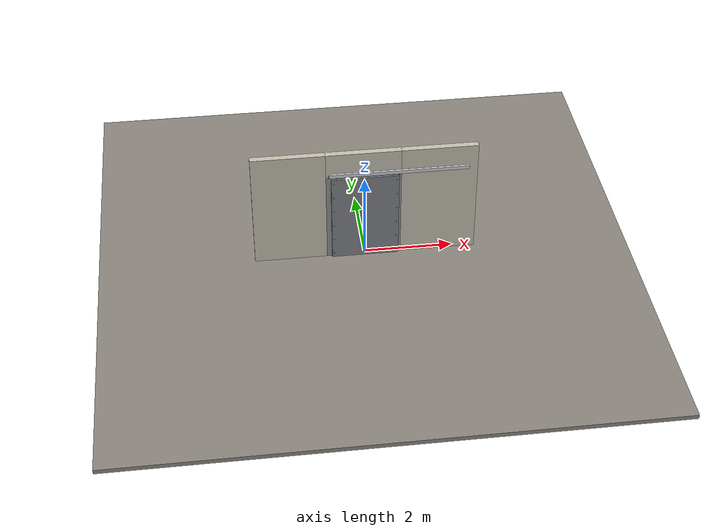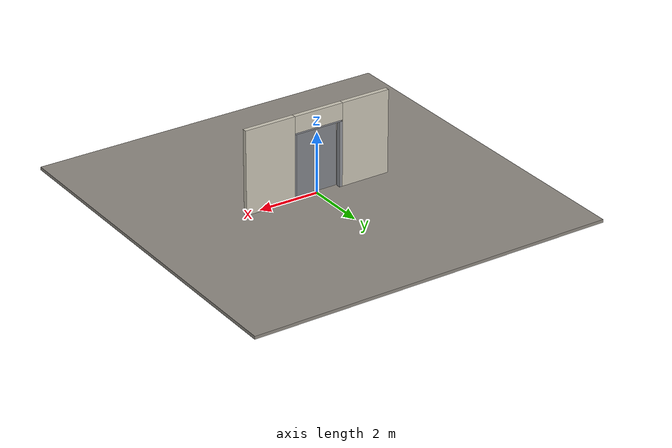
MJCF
<?xml version="1.0" ?>
<mujoco model="db0038_sliding_single_full">
  <compiler angle="radian" meshdir="../../hardware" texturedir="../../textures" autolimits="true" inertiafromgeom="false"/>
  <option timestep="0.002" integrator="implicitfast" cone="elliptic" impratio="10" noslip_iterations="3">
    <flag multiccd="enable"/>
  </option>
  <size memory="16M"/>
  <default>
    <geom condim="4" solref="0.005 1" solimp="0.95 0.99 0.001"/>
    <joint solreflimit="0.005 1" solimplimit="0.95 0.99 0.001"/>
    <tendon solreflimit="0.005 1"/>
    <equality solref="0.002 1"/>
  </default>
  <visual>
    <headlight ambient="0.4 0.4 0.4" diffuse="0.7 0.7 0.7" specular="0.2 0.2 0.2"/>
    <quality shadowsize="4096"/>
    <map znear="0.01" zfar="60"/>
  </visual>
  <asset>
    <material name="mat_floor" rgba="0.55 0.53 0.5 1" specular="0.2" shininess="0.15" reflectance="0"/>
    <material name="mat_wall" rgba="0.78 0.76 0.7 1" specular="0.2" shininess="0.1" reflectance="0"/>
    <material name="mat_frame" rgba="0.55 0.56 0.58 1" specular="0.8" shininess="0.55" reflectance="0.4"/>
    <material name="mat_track" rgba="0.8 0.81 0.83 1" specular="0.8" shininess="0.6" reflectance="0.4"/>
    <material name="mat_leaf" rgba="0.5 0.51 0.53 1" specular="0.23" shininess="0.48" reflectance="0.02"/>
    <material name="mat_rivet" rgba="0.55 0.56 0.58 1" specular="0.8" shininess="0.55" reflectance="0.4"/>
    <material name="mat_roller" rgba="0.65 0.66 0.68 1" specular="0.74" shininess="0.5" reflectance="0.36"/>
    <material name="mat_hook" rgba="0.75 0.76 0.77 1" specular="0.8" shininess="0.65" reflectance="0.4"/>
    <texture name="skybox" type="skybox" builtin="gradient" rgb1="0.6 0.7 0.85" rgb2="0.9 0.92 0.95" width="256" height="256"/>
  </asset>
  <worldbody>
    <light name="sun" pos="1.5 -2.5 4" dir="-0.3 0.5 -0.8" directional="true" diffuse="0.8 0.8 0.8" specular="0.3 0.3 0.3" castshadow="true"/>
    <light name="fill" pos="-1.5 2.5 3" dir="0.3 -0.5 -0.7" directional="true" diffuse="0.35 0.35 0.4" castshadow="false"/>
    <camera name="robot_view" pos="0 -2.644375 1.817425" xyaxes="1 0 0 0 0.26963 0.962964" fovy="52"/>
    <camera name="far_view" pos="0 2.644375 1.817425" xyaxes="-1 0 0 0 -0.26963 0.962964" fovy="52"/>
    <camera name="iso" pos="2.009725 -2.221275 2.240525" xyaxes="0.741536 0.670913 0 -0.242917 0.268487 0.932151" fovy="46"/>
    <camera name="detail_handle" pos="0.48 -0.8 1.23" xyaxes="0.97561 0.219512 0 -0.070934 0.315262 0.94635" fovy="38"/>
    <geom name="floor" type="box" size="6 6 0.05" pos="0 0 -0.05" material="mat_floor" group="0" contype="1" conaffinity="1" friction="0.8 0.005 0.0001" density="2400"/>
    <geom name="wall_left" type="box" size="0.8175 0.0725 1.377" pos="-1.6825 0 1.377" material="mat_wall" group="0" contype="1" conaffinity="1" friction="0.6 0.005 0.0001" density="800"/>
    <geom name="wall_right" type="box" size="0.8475 0.0725 1.377" pos="1.6525 0 1.377" material="mat_wall" group="0" contype="1" conaffinity="1" friction="0.6 0.005 0.0001" density="800"/>
    <geom name="wall_header" type="box" size="0.835 0.0725 0.2775" pos="-0.03 0 2.4765" material="mat_wall" group="0" contype="1" conaffinity="1" friction="0.6 0.005 0.0001" density="800"/>
    <geom name="jamb_r" type="box" size="0.0225 0.0725 1.077" pos="0.7825 0 1.077" material="mat_frame" group="0" contype="1" conaffinity="1" friction="0.6 0.005 0.0001" density="300"/>
    <geom name="jamb_head" type="box" size="0.805 0.0725 0.0225" pos="0 0 2.1765" material="mat_frame" group="0" contype="1" conaffinity="1" friction="0.6 0.005 0.0001" density="300"/>
    <geom name="track_header" type="box" size="1.55 0.025 0.04" pos="0.75 -0.1145 2.239" material="mat_track" group="0" contype="1" conaffinity="1" friction="0.6 0.005 0.0001" density="2700"/>
    <geom name="jamb_latch_0" type="box" size="0.0525 0.0725 1.077" pos="-0.8125 0 1.077" material="mat_frame" group="0" contype="1" conaffinity="1" friction="0.6 0.005 0.0001" density="300"/>
    <geom name="track_header_bracket" type="box" size="1.24 0.009 0.032" pos="0.75 -0.081 2.239" material="mat_hook" group="1" contype="0" conaffinity="0" density="7850"/>
    <site name="approach_point" pos="0 -1.5 0" quat="1 0 0 0" size="0.05" rgba="0.2 0.9 0.2 0.5" group="4"/>
    <site name="goal_point" pos="0 1.5 0" quat="1 0 0 0" size="0.05" rgba="0.2 0.9 0.2 0.5" group="4"/>
    <site name="door_plane_center" pos="0 0 1.077" quat="1 0 0 0" size="0.02" rgba="0.2 0.9 0.2 0.5" group="4"/>
    <body name="leaf" pos="0 -0.1145 0">
      <inertial pos="0 -0.000108 1.085174" mass="137.186155" quat="-0.5 0.5 0.5 0.5" diaginertia="26.115191991 52.721548947 78.792245759"/>
      <joint name="leaf_slide" type="slide" axis="1 0 0" limited="true" range="0 1.5" damping="8.859308" frictionloss="26.234064" armature="0.5"/>
      <geom name="leaf_slab" type="box" size="0.75 0.022 1.067" pos="0 0 1.079" material="mat_leaf" group="0" contype="1" conaffinity="1" friction="0.45 0.005 0.0001" density="1"/>
      <geom name="leaf_rivet_0_0" type="sphere" size="0.012" pos="-0.7 -0.022 0.112" material="mat_rivet" group="2" contype="0" conaffinity="0" density="7850"/>
      <geom name="leaf_rivet_0_1" type="sphere" size="0.012" pos="0.7 -0.022 0.112" material="mat_rivet" group="2" contype="0" conaffinity="0" density="7850"/>
      <geom name="leaf_rivet_1_0" type="sphere" size="0.012" pos="-0.7 -0.022 0.4988" material="mat_rivet" group="2" contype="0" conaffinity="0" density="7850"/>
      <geom name="leaf_rivet_1_1" type="sphere" size="0.012" pos="0.7 -0.022 0.4988" material="mat_rivet" group="2" contype="0" conaffinity="0" density="7850"/>
      <geom name="leaf_rivet_2_0" type="sphere" size="0.012" pos="-0.7 -0.022 0.8856" material="mat_rivet" group="2" contype="0" conaffinity="0" density="7850"/>
      <geom name="leaf_rivet_2_1" type="sphere" size="0.012" pos="0.7 -0.022 0.8856" material="mat_rivet" group="2" contype="0" conaffinity="0" density="7850"/>
      <geom name="leaf_rivet_3_0" type="sphere" size="0.012" pos="-0.7 -0.022 1.2724" material="mat_rivet" group="2" contype="0" conaffinity="0" density="7850"/>
      <geom name="leaf_rivet_3_1" type="sphere" size="0.012" pos="0.7 -0.022 1.2724" material="mat_rivet" group="2" contype="0" conaffinity="0" density="7850"/>
      <geom name="leaf_rivet_4_0" type="sphere" size="0.012" pos="-0.7 -0.022 1.6592" material="mat_rivet" group="2" contype="0" conaffinity="0" density="7850"/>
      <geom name="leaf_rivet_4_1" type="sphere" size="0.012" pos="0.7 -0.022 1.6592" material="mat_rivet" group="2" contype="0" conaffinity="0" density="7850"/>
      <geom name="leaf_rivet_5_0" type="sphere" size="0.012" pos="-0.7 -0.022 2.046" material="mat_rivet" group="2" contype="0" conaffinity="0" density="7850"/>
      <geom name="leaf_rivet_5_1" type="sphere" size="0.012" pos="0.7 -0.022 2.046" material="mat_rivet" group="2" contype="0" conaffinity="0" density="7850"/>
      <geom name="leaf_carrier_0" type="box" size="0.02 0.005 0.0545" pos="-0.63 0 2.1405" material="mat_roller" group="1" contype="0" conaffinity="0" density="7850"/>
      <geom name="leaf_carrier_wheel_0" type="cylinder" size="0.014 0.006" pos="-0.63 0 2.185" quat="0.707107 -0.707107 0 0" material="mat_roller" group="1" contype="0" conaffinity="0" density="7850"/>
      <geom name="leaf_carrier_1" type="box" size="0.02 0.005 0.0545" pos="0.63 0 2.1405" material="mat_roller" group="1" contype="0" conaffinity="0" density="7850"/>
      <geom name="leaf_carrier_wheel_1" type="cylinder" size="0.014 0.006" pos="0.63 0 2.185" quat="0.707107 -0.707107 0 0" material="mat_roller" group="1" contype="0" conaffinity="0" density="7850"/>
      <site name="leaf_edge_mid" pos="-0.75 0 1.079" quat="1 0 0 0" size="0.02" rgba="0.2 0.9 0.2 0.5" group="4"/>
    </body>
  </worldbody>
  <sensor>
    <jointpos name="leaf_slide_pos" joint="leaf_slide"/>
    <jointvel name="leaf_slide_vel" joint="leaf_slide"/>
  </sensor>
</mujoco>
